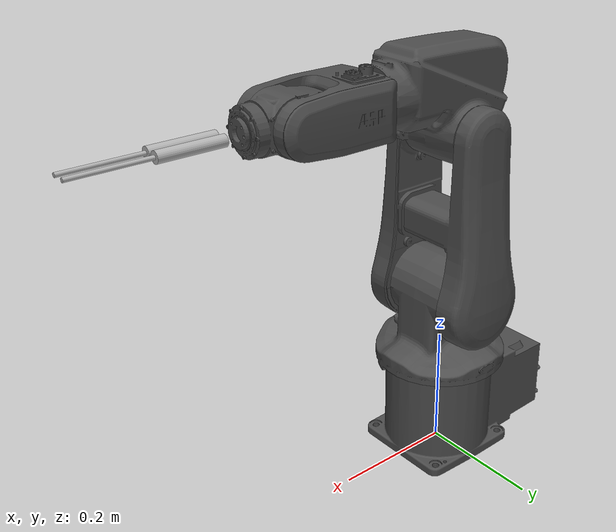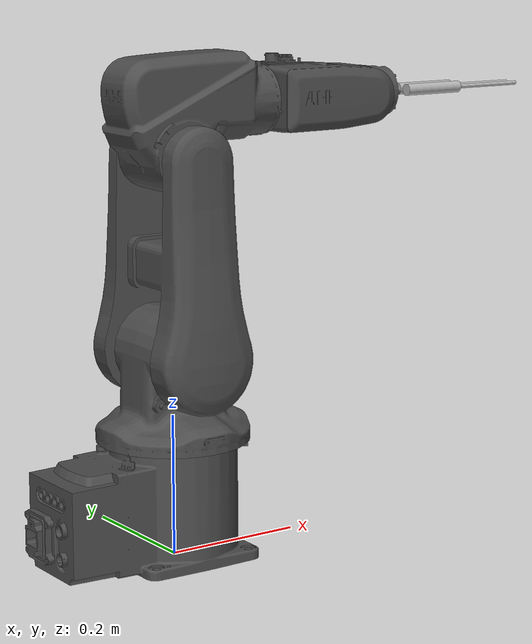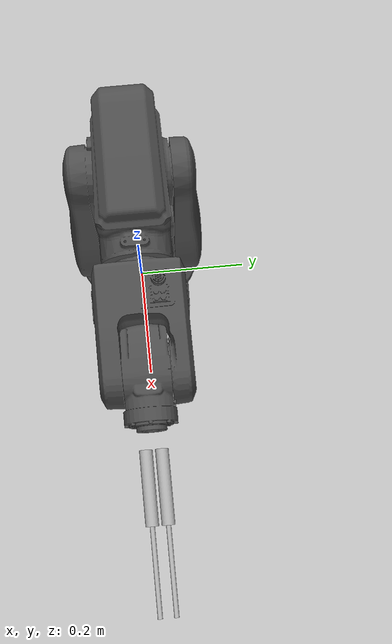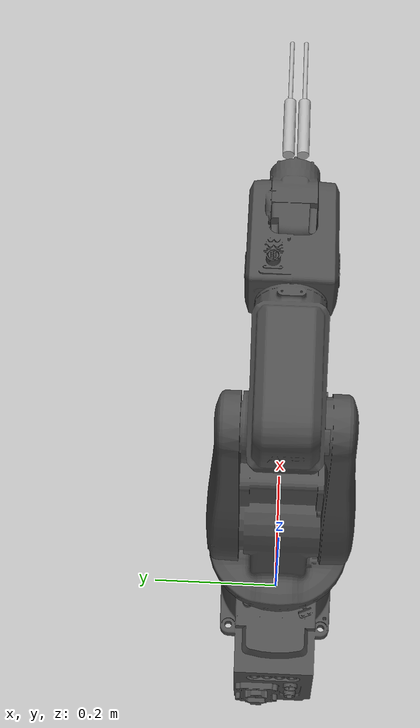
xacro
<?xml version="1.0" ?>
<!-- Peter KT Yu, Apr 1 -->
<robot name="irb_120_twofinger" xmlns:xacro="http://ros.org/wiki/xacro">
  <!-- The 120 robot-->
  <xacro:include filename="$(find pnpush_config)/models/IRB120/abb_robot_model/IRB120_3_58__01/xacro/IRB120_3_58__01.xacro"/>

  <!-- The two fingers-->
  <xacro:macro name="TOOL" params="suffix reflect">
      <link name="link_ft_${suffix}"/>
      <xacro:property name="mount_length" value="0.0965" />
      <xacro:property name="probe_length" value="0.113" />

      <xacro:LINK_CYLINDER name="link_mount_${suffix}" radius="0.0085" length="${mount_length}"/>
      <xacro:LINK_CYLINDER name="link_probe_${suffix}" radius="0.00316" length="${probe_length}"/>

      <xacro:JOINT name="wsg_32_gripper_base_joint_gripper_${suffix}" type="prismatic" xyz="0 ${reflect*0.0103} 0.12"
       rpy="0 0 0" axis="0 ${reflect} 0" effort="1" velocity="100" lower="0" upper="0.035" parent="link_6" child="link_mount_${suffix}"/>

      <xacro:FIXED_JOINT name="joint_ft_sense_${suffix}" xyz="0 0 0" rpy="0 0 ${-pi/4*3}" parent="link_mount_${suffix}" child="link_ft_${suffix}"/>
      <xacro:FIXED_JOINT name="joint_probe_${suffix}" xyz="0 0 ${probe_length}" rpy="0 0 ${pi/4*3}" parent="link_ft_${suffix}" child="link_probe_${suffix}"/>
  </xacro:macro>

  <xacro:TOOL suffix="left" reflect="1"/>
  <xacro:TOOL suffix="right" reflect="-1"/>

</robot>

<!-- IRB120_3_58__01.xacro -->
<robot name="IRB120_3_58__01" xmlns:xacro="http://ros.org/wiki/xacro">
<xacro:include filename="$(find pnpush_config)/models/IRB120/abb_robot_model/IRB120_3_58__01/xacro/utils/colors.xacro"/>
<xacro:include filename="$(find pnpush_config)/models/IRB120/abb_robot_model/IRB120_3_58__01/xacro/utils/link.xacro"/>
<xacro:include filename="$(find pnpush_config)/models/IRB120/abb_robot_model/IRB120_3_58__01/xacro/utils/joint.xacro"/>
<xacro:LINK robot_name="IRB120_3_58__01" link_name="base_link" mesh_name="Base.dae" mass="50" color="default"/>
<xacro:LINK robot_name="IRB120_3_58__01" link_name="link_1" mesh_name="Link1.dae" mass="50" color="default"/>
<xacro:LINK robot_name="IRB120_3_58__01" link_name="link_2" mesh_name="Link2.dae" mass="50" color="default"/>
<xacro:LINK robot_name="IRB120_3_58__01" link_name="link_3" mesh_name="Link3.dae" mass="50" color="default"/>
<xacro:LINK robot_name="IRB120_3_58__01" link_name="link_4" mesh_name="Link4.dae" mass="50" color="default"/>
<xacro:LINK robot_name="IRB120_3_58__01" link_name="link_5" mesh_name="Link5.dae" mass="50" color="default"/>
<xacro:LINK_OFFSET robot_name="IRB120_3_58__01" link_name="link_6" mesh_name="Link6.dae" mass="50" color="default" xyz="0 0 -0.072" rpy="0 -1.5707963267949 0"/>
<xacro:JOINT name="joint1" type="revolute" xyz="0.000 0.000 0.290" rpy="0 0 0" axis="0.000 0.000 1.000" effort="7" velocity="10" lower="-2.87979326579064" upper="2.87979326579064" parent="base_link" child="link_1"/>
<xacro:JOINT name="joint2" type="revolute" xyz="0.000 0.000 0.000" rpy="0 0 0" axis="0.000 1.000 0.000" effort="7" velocity="10" lower="-1.91986217719376" upper="1.91986217719376" parent="link_1" child="link_2"/>
<xacro:JOINT name="joint3" type="revolute" xyz="0.000 0.000 0.270" rpy="0 0 0" axis="0.000 1.000 0.000" effort="7" velocity="10" lower="-1.5707963267949" upper="1.22173047639603" parent="link_2" child="link_3"/>
<xacro:JOINT name="joint4" type="revolute" xyz="0.302 0.000 0.070" rpy="0 0 0" axis="1.000 0.000 0.000" effort="7" velocity="10" lower="-2.79252680319093" upper="2.79252680319093" parent="link_3" child="link_4"/>
<xacro:JOINT name="joint5" type="revolute" xyz="0.000 0.000 0.000" rpy="0 0 0" axis="0.000 1.000 0.000" effort="7" velocity="10" lower="-2.0943951023932" upper="2.0943951023932" parent="link_4" child="link_5"/>
<xacro:JOINT name="joint6" type="revolute" xyz="0.072 0.000 0.000" rpy="0 1.57079621992 0" axis="0.000 0.000 1.000" effort="7" velocity="10" lower="-6.98131700797732" upper="6.98131700797732" parent="link_5" child="link_6"/>
</robot>

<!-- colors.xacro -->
<robot xmlns:xacro="http://ros.org/wiki/xacro">
  <material name="default">
    <color rgba="0.96 0.76 0.13 1.0"/>
  </material>
</robot>

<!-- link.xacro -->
<robot xmlns:xacro="http://ros.org/wiki/xacro">
  <xacro:macro name="LINK" params="robot_name link_name mesh_name mass color">
    <link name="${link_name}">
      <inertial>
        <mass value="${mass}"/>
        <inertia ixx="1" ixy="1" ixz="1" iyy="1" iyz="1" izz="1"/>
      </inertial>
      <visual>
        <origin xyz="0 0 0" rpy="0 0 0"/>
        <geometry>
          <mesh filename="package://pnpush_config/models/IRB120/abb_robot_model/${robot_name}/mesh/${robot_name}/${mesh_name}"/>
        </geometry>
        <material name="${color}">
          <color rgba="0.3 0.3 0.3 1.0"/>
        </material>
      </visual>
      <collision>
        <origin xyz="0 0 0" rpy="0 0 0"/>
        <geometry>
          <mesh filename="package://pnpush_config/models/IRB120/abb_robot_model/${robot_name}/mesh/${robot_name}/${mesh_name}"/>
        </geometry>
      </collision>
    </link>
  </xacro:macro>
  <xacro:macro name="LINK_OFFSET" params="robot_name link_name mesh_name mass color xyz rpy">
    <link name="${link_name}">
      <inertial>
        <mass value="${mass}"/>
        <inertia ixx="1" ixy="1" ixz="1" iyy="1" iyz="1" izz="1"/>
      </inertial>
      <visual>
        <origin xyz="${xyz}" rpy="${rpy}"/>
        <geometry>
          <mesh filename="package://pnpush_config/models/IRB120/abb_robot_model/${robot_name}/mesh/${robot_name}/${mesh_name}"/>
        </geometry>
        <material name="${color}">
          <color rgba="0.3 0.3 0.3 1.0"/>
        </material>
      </visual>
      <collision>
        <origin xyz="${xyz}" rpy="${rpy}"/>
        <geometry>
          <mesh filename="package://pnpush_config/models/IRB120/abb_robot_model/${robot_name}/mesh/${robot_name}/${mesh_name}"/>
        </geometry>
      </collision>
    </link>
  </xacro:macro>

  <xacro:macro name="LINK_CYLINDER" params="name radius length">
    <link name="${name}">
    <visual>
      <geometry>
        <cylinder radius="${radius}" length="${length}"/>
      </geometry>
      <origin rpy="0 0 0" xyz="0 0 ${-length/2}"/>
      <material name="abb_gray">
        <color rgba="0.7 0.7 0.7 1"/>
      </material>
    </visual>
    <collision>
      <geometry>
        <cylinder radius="${radius}" length="${length}"/>
      </geometry>
      <origin rpy="0 0 0" xyz="0 0 ${-length/2}"/>
    </collision>
    </link>
  </xacro:macro>
</robot>

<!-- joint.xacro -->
<robot xmlns:xacro="http://ros.org/wiki/xacro">

  <xacro:macro name="JOINT" params="name type xyz rpy axis effort velocity lower upper parent child">
    <joint name="${name}" type="${type}">
      <origin xyz="${xyz}" rpy="${rpy}"/>
      <axis xyz="${axis}"/>
      <limit effort="${effort}" velocity="${velocity}" lower="${lower}" upper="${upper}" />
      <parent link="${parent}"/>
      <child link="${child}"/>
    </joint>
  </xacro:macro>

  <xacro:macro name="FIXED_JOINT" params="name xyz rpy parent child">
    <joint name="${name}" type="fixed">
      <origin xyz="${xyz}" rpy="${rpy}"/>
      <parent link="${parent}"/>
      <child link="${child}"/>
    </joint>
  </xacro:macro>

  <xacro:macro name="CONTINUOUS_JOINT" params="name xyz rpy axis parent child">
    <joint name="${name}" type="continuous">
      <origin xyz="${xyz}" rpy="${rpy}"/>
      <axis xyz="${axis}"/>
      <parent link="${parent}"/>
      <child link="${child}"/>
    </joint>
  </xacro:macro>

  <xacro:macro name="CONTINUOUS_JOINT_MIMIC" params="name xyz rpy axis parent child mimic_joint mimic_multiplier mimic_offset">
    <joint name="${name}" type="continuous">
      <origin xyz="${xyz}" rpy="${rpy}"/>
      <axis xyz="${axis}"/>
      <parent link="${parent}"/>
      <child link="${child}"/>
      <mimic joint="${mimic_joint}" multiplier="${mimic_multiplier}" offset="${mimic_offset}"/>
    </joint>
  </xacro:macro>

  <xacro:macro name="FIX_BASE" params="child xyz rpy">
    <link name="world"/>
    <joint name="fixed_base_joint" type="fixed">
      <origin xyz="${xyz}" rpy="${rpy}"/>
      <parent link="world"/>
      <child link="${child}"/>
    </joint>
  </xacro:macro>

  <xacro:macro name="FIX_TOOL0" params="parent xyz rpy">
    <link name="tool0"/>
    <joint name="fixed_tool0_joint" type="fixed">
      <origin xyz="${xyz}" rpy="${rpy}"/>
      <parent link="${parent}"/>
      <child link="tool0"/>
    </joint>
  </xacro:macro>

</robot>
